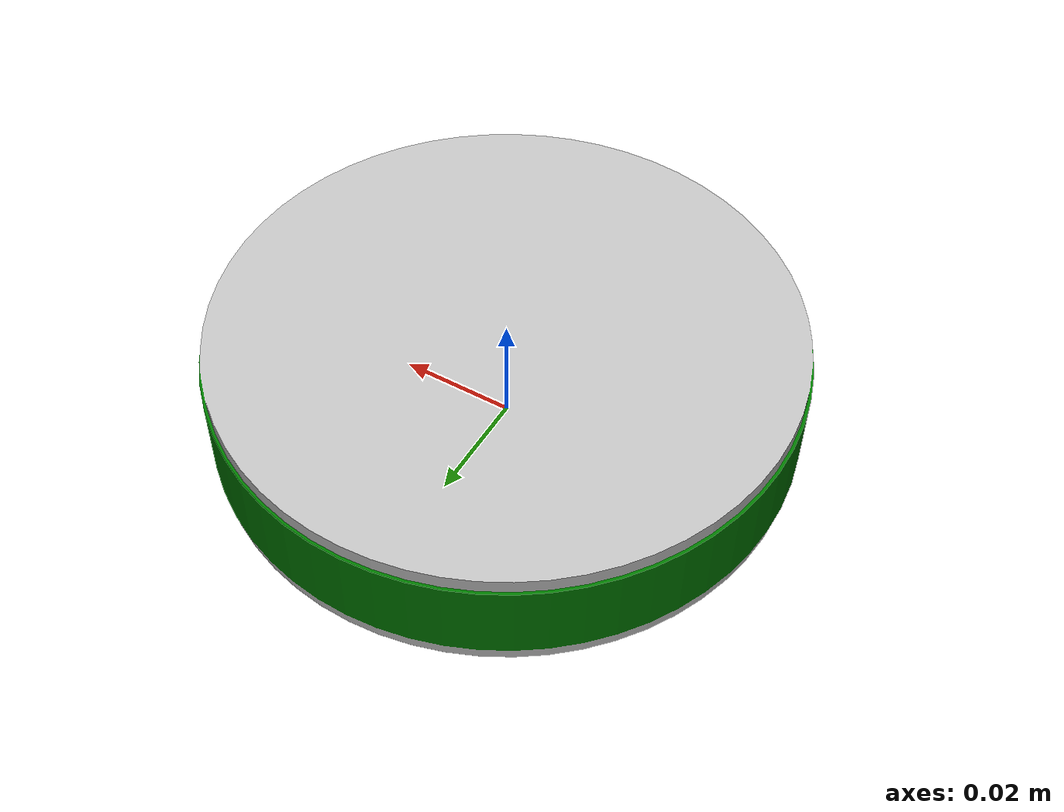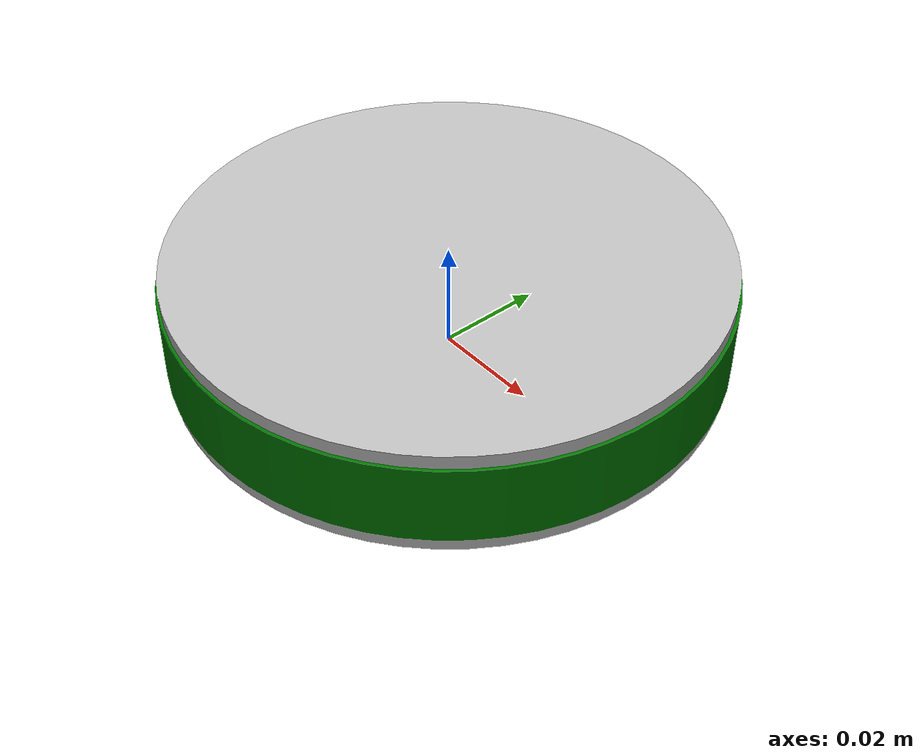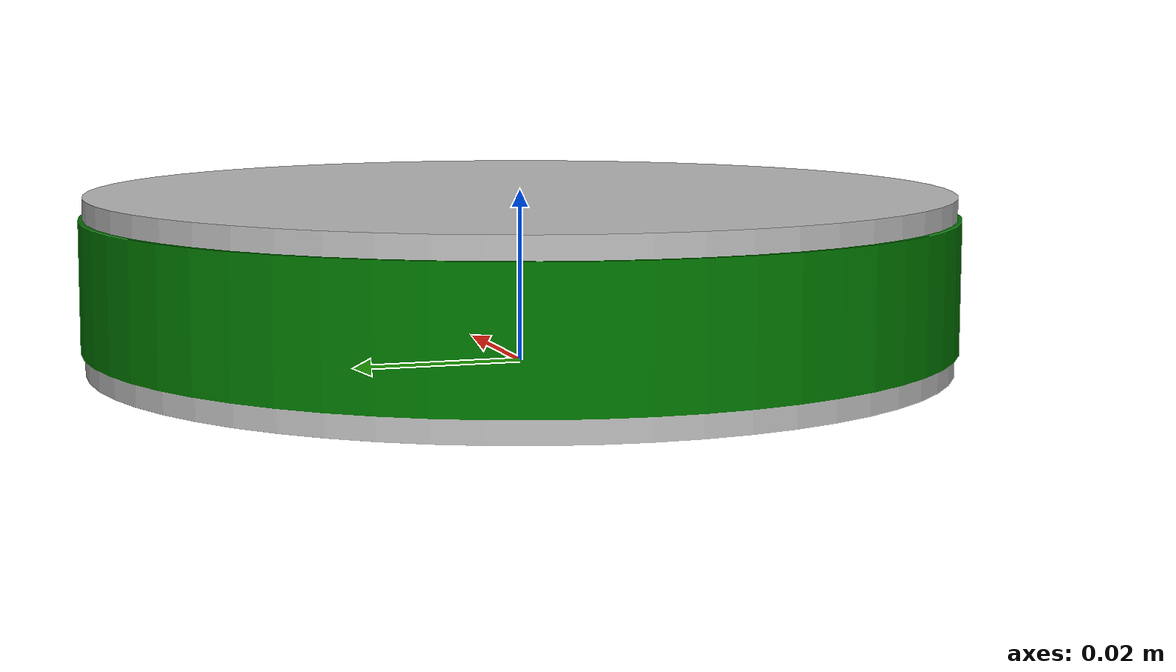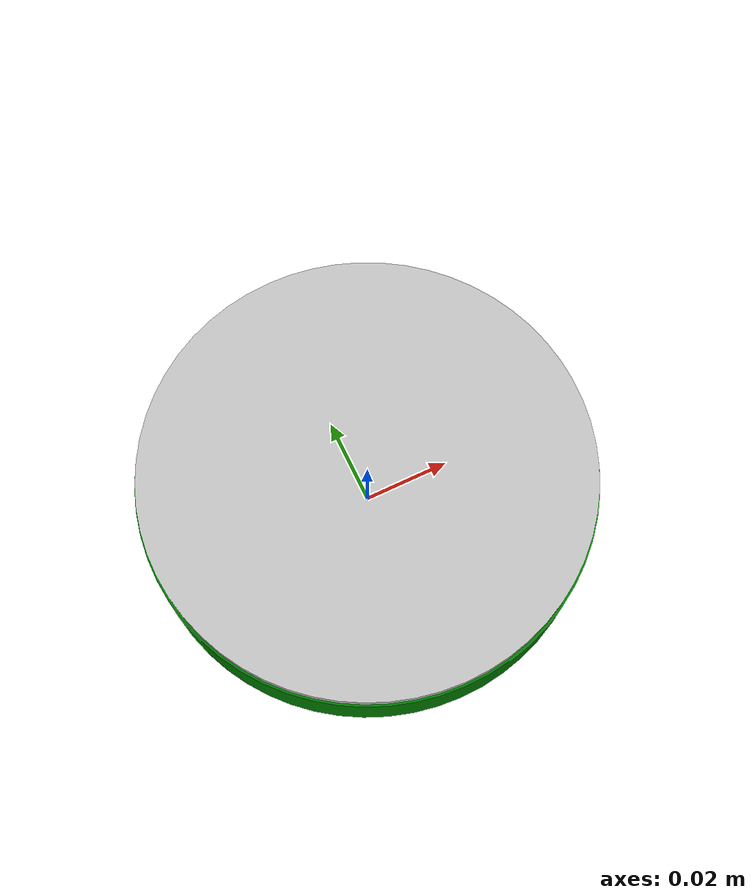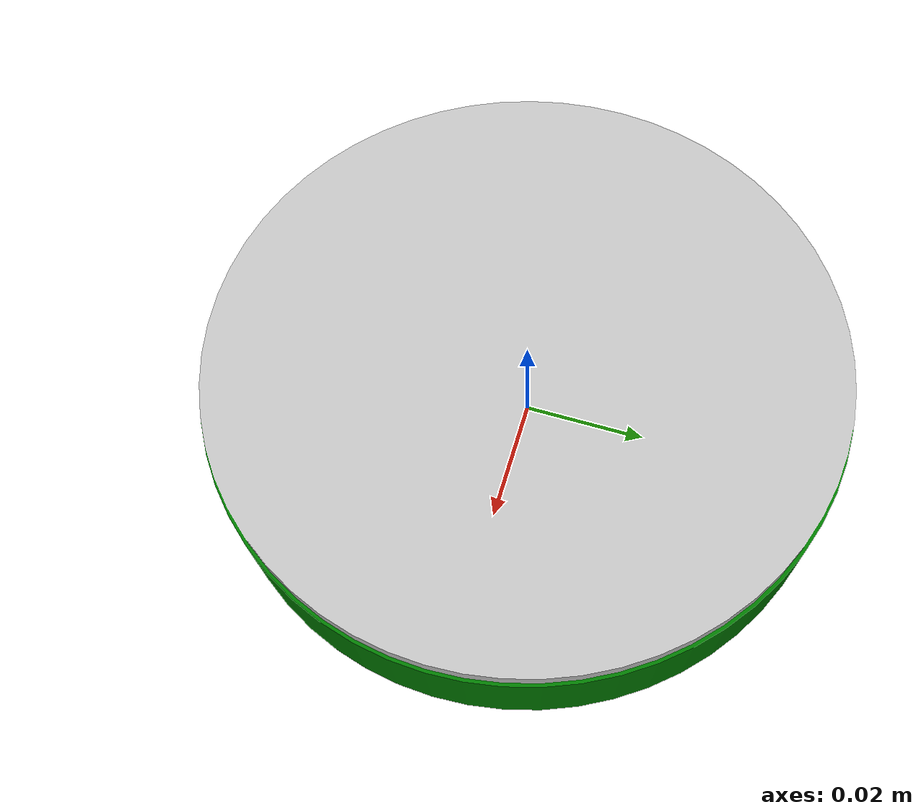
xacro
<?xml version="1.0"?>

<robot name="disc1">

  <link name="disc1">
    <inertial>
      <origin xyz="0 0 0" />
      <mass value="0.1" />
      <inertia  ixx="1" ixy="0"  ixz="0"  iyy="1"  iyz="0"  izz="1"/>
    </inertial>
    <visual>
      <origin xyz="0 0 0"/>
      <geometry>
        <mesh filename="package://tower_of_hanoi/meshes/disc_100.dae"/>
      </geometry>
    </visual>
    <collision>
      <origin xyz="0 0 0.008"/>
      <geometry>
        <cylinder length="0.022" radius="0.05"/>
      </geometry>
    </collision>
  </link>

  <gazebo reference="disc1">
    <mu1>10.0</mu1>
    <mu2>10.0</mu2>
    <maxVel>0.0</maxVel>
  </gazebo>

</robot>
